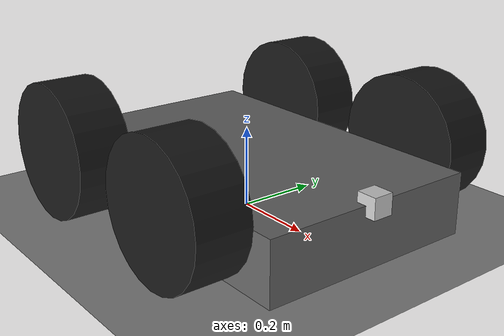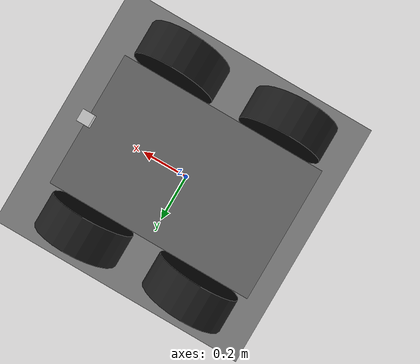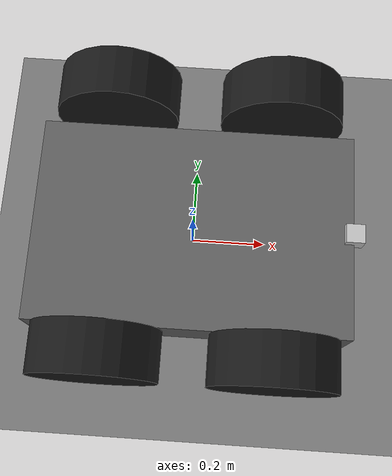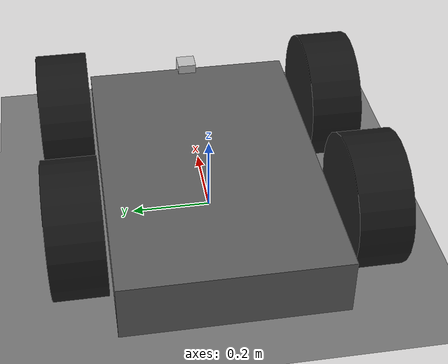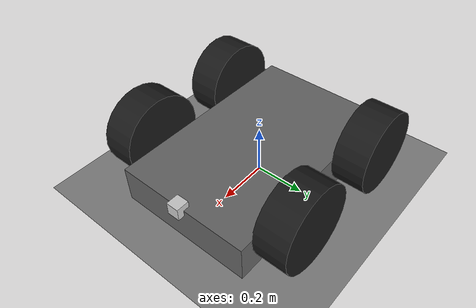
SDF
<?xml version="1.0" ?>
<sdf version="1.7">
  <world name="field_world">
    <!-- Physics and Scene Configuration -->
    <physics name="default_physics" type="dart">
      <dart>
        <collision_detector>bullet</collision_detector>
      </dart>
    </physics>

    <scene>
      <ambient>0.8 0.8 0.8 1.0</ambient>
      <background>0.9 0.9 0.9 1.0</background>
    </scene>

    <!-- Ground Plane -->
    <model name="ground_plane">
      <static>true</static>
      <link name="link">
        <collision name="collision">
          <geometry>
            <plane>
              <normal>0 0 1</normal>
              <size>100 100</size>
            </plane>
          </geometry>
        </collision>
        <visual name="visual">
          <geometry>
            <plane>
              <normal>0 0 1</normal>
              <size>100 100</size>
            </plane>
          </geometry>
          <material>
            <ambient>0.5 0.5 0.5 1</ambient>
            <diffuse>0.5 0.5 0.5 1</diffuse>
            <specular>0.0 0.0 0.0 1</specular>
          </material>
        </visual>
      </link>
    </model>

    <!-- Sun Light -->
    <model name="sun">
      <static>true</static>
      <link name="link">
        <light name="sun" type="directional">
          <cast_shadows>true</cast_shadows>
          <intensity>1.0</intensity>
          <direction>-0.5 0.1 -0.9</direction>
          <diffuse>0.8 0.8 0.8 1</diffuse>
          <specular>0.2 0.2 0.2 1</specular>
        </light>
      </link>
    </model>

    <!-- Fieldbot Robot Model -->
    <model name="fieldbot">
      <static>false</static>
      <pose>0 0 0 0 0 0</pose>

      <!-- Chassis (base link) -->
      <link name="base_link">
        <pose>0 0 0.075 0 0 0</pose>
        <inertial>
          <mass>11.78</mass>
          <!-- Inertia for box: Ixx=(1/12)*m*(w^2+h^2), Iyy=(1/12)*m*(l^2+h^2), Izz=(1/12)*m*(l^2+w^2) -->
          <!-- With L=0.85, W=0.55, H=0.15, m=11.78 -->
          <inertia>
            <ixx>0.3190</ixx>
            <iyy>0.7313</iyy>
            <izz>1.0062</izz>
            <ixy>0.0</ixy>
            <ixz>0.0</ixz>
            <iyz>0.0</iyz>
          </inertia>
        </inertial>
        <visual name="chassis_visual">
          <pose>0 0 0 0 0 0</pose>
          <geometry>
            <box>
              <size>0.85 0.55 0.15</size>
            </box>
          </geometry>
          <material>
            <ambient>0.2 0.2 0.2 1</ambient>
            <diffuse>0.4 0.4 0.4 1</diffuse>
            <specular>0.1 0.1 0.1 1</specular>
          </material>
        </visual>
        <collision name="chassis_collision">
          <pose>0 0 0 0 0 0</pose>
          <geometry>
            <box>
              <size>0.85 0.55 0.15</size>
            </box>
          </geometry>
        </collision>
      </link>

      <!-- Battery compartment link (mounted on chassis) -->
      <link name="battery_link">
        <pose>0 0 -0.02 0 0 0</pose>
        <inertial>
          <mass>4.0</mass>
          <inertia>
            <ixx>0.005</ixx>
            <iyy>0.008</iyy>
            <izz>0.010</izz>
            <ixy>0.0</ixy>
            <ixz>0.0</ixz>
            <iyz>0.0</iyz>
          </inertia>
        </inertial>
        <visual name="battery_visual">
          <geometry>
            <box>
              <size>0.3 0.2 0.05</size>
            </box>
          </geometry>
          <material>
            <ambient>0.8 0.1 0.1 1</ambient>
            <diffuse>1.0 0.2 0.2 1</diffuse>
          </material>
        </visual>
      </link>

      <joint name="battery_joint" type="fixed">
        <parent>base_link</parent>
        <child>battery_link</child>
      </joint>

      <!-- Wheel parameters -->
      <!-- wheel radius = 0.165 m (33 cm diameter), width = 0.13 m -->
      <!-- Mass per wheel = 3.25 kg (includes motor and bearings) -->

      <!-- Front Left Wheel -->
      <link name="wheel_front_left_link">
        <pose>0.2225 0.35 0.165 0 0 0</pose>
        <inertial>
          <mass>3.25</mass>
          <!-- Cylinder inertia: Ixx=Izz=(1/4)*m*r^2+(1/12)*m*w^2, Iyy=(1/2)*m*r^2 -->
          <inertia>
            <ixx>0.02689</ixx>
            <iyy>0.04437</iyy>
            <izz>0.02689</izz>
            <ixy>0.0</ixy>
            <ixz>0.0</ixz>
            <iyz>0.0</iyz>
          </inertia>
        </inertial>
        <visual name="wheel_fl_visual">
          <pose>0 0 0 1.5708 0 0</pose>
          <geometry>
            <cylinder>
              <radius>0.165</radius>
              <length>0.13</length>
            </cylinder>
          </geometry>
          <material>
            <ambient>0.05 0.05 0.05 1</ambient>
            <diffuse>0.1 0.1 0.1 1</diffuse>
          </material>
        </visual>
        <collision name="wheel_fl_collision">
          <pose>0 0 0 1.5708 0 0</pose>
          <geometry>
            <cylinder>
              <radius>0.165</radius>
              <length>0.13</length>
            </cylinder>
          </geometry>
        </collision>
      </link>

      <!-- Front Right Wheel -->
      <link name="wheel_front_right_link">
        <pose>0.2225 -0.35 0.165 0 0 0</pose>
        <inertial>
          <mass>3.25</mass>
          <inertia>
            <ixx>0.02689</ixx>
            <iyy>0.04437</iyy>
            <izz>0.02689</izz>
            <ixy>0.0</ixy>
            <ixz>0.0</ixz>
            <iyz>0.0</iyz>
          </inertia>
        </inertial>
        <visual name="wheel_fr_visual">
          <pose>0 0 0 1.5708 0 0</pose>
          <geometry>
            <cylinder>
              <radius>0.165</radius>
              <length>0.13</length>
            </cylinder>
          </geometry>
          <material>
            <ambient>0.05 0.05 0.05 1</ambient>
            <diffuse>0.1 0.1 0.1 1</diffuse>
          </material>
        </visual>
        <collision name="wheel_fr_collision">
          <pose>0 0 0 1.5708 0 0</pose>
          <geometry>
            <cylinder>
              <radius>0.165</radius>
              <length>0.13</length>
            </cylinder>
          </geometry>
        </collision>
      </link>

      <!-- Rear Left Wheel -->
      <link name="wheel_rear_left_link">
        <pose>-0.2225 0.35 0.165 0 0 0</pose>
        <inertial>
          <mass>3.25</mass>
          <inertia>
            <ixx>0.02689</ixx>
            <iyy>0.04437</iyy>
            <izz>0.02689</izz>
            <ixy>0.0</ixy>
            <ixz>0.0</ixz>
            <iyz>0.0</iyz>
          </inertia>
        </inertial>
        <visual name="wheel_rl_visual">
          <pose>0 0 0 1.5708 0 0</pose>
          <geometry>
            <cylinder>
              <radius>0.165</radius>
              <length>0.13</length>
            </cylinder>
          </geometry>
          <material>
            <ambient>0.05 0.05 0.05 1</ambient>
            <diffuse>0.1 0.1 0.1 1</diffuse>
          </material>
        </visual>
        <collision name="wheel_rl_collision">
          <pose>0 0 0 1.5708 0 0</pose>
          <geometry>
            <cylinder>
              <radius>0.165</radius>
              <length>0.13</length>
            </cylinder>
          </geometry>
        </collision>
      </link>

      <!-- Rear Right Wheel -->
      <link name="wheel_rear_right_link">
        <pose>-0.2225 -0.35 0.165 0 0 0</pose>
        <inertial>
          <mass>3.25</mass>
          <inertia>
            <ixx>0.02689</ixx>
            <iyy>0.04437</iyy>
            <izz>0.02689</izz>
            <ixy>0.0</ixy>
            <ixz>0.0</ixz>
            <iyz>0.0</iyz>
          </inertia>
        </inertial>
        <visual name="wheel_rr_visual">
          <pose>0 0 0 1.5708 0 0</pose>
          <geometry>
            <cylinder>
              <radius>0.165</radius>
              <length>0.13</length>
            </cylinder>
          </geometry>
          <material>
            <ambient>0.05 0.05 0.05 1</ambient>
            <diffuse>0.1 0.1 0.1 1</diffuse>
          </material>
        </visual>
        <collision name="wheel_rr_collision">
          <pose>0 0 0 1.5708 0 0</pose>
          <geometry>
            <cylinder>
              <radius>0.165</radius>
              <length>0.13</length>
            </cylinder>
          </geometry>
        </collision>
      </link>

      <!-- Joints: revolute joints connecting wheels to base -->
      <joint name="joint_wheel_fl" type="revolute">
        <parent>base_link</parent>
        <child>wheel_front_left_link</child>
        <pose>0.2225 0.35 0 0 0 0</pose>
        <axis>
          <xyz>0 1 0</xyz>
          <limit>
            <lower>-1000</lower>
            <upper>1000</upper>
            <effort>100</effort>
            <velocity>10</velocity>
          </limit>
          <dynamics>
            <damping>0.05</damping>
            <friction>0.01</friction>
          </dynamics>
        </axis>
      </joint>

      <joint name="joint_wheel_fr" type="revolute">
        <parent>base_link</parent>
        <child>wheel_front_right_link</child>
        <pose>0.2225 -0.35 0 0 0 0</pose>
        <axis>
          <xyz>0 1 0</xyz>
          <limit>
            <lower>-1000</lower>
            <upper>1000</upper>
            <effort>100</effort>
            <velocity>10</velocity>
          </limit>
          <dynamics>
            <damping>0.05</damping>
            <friction>0.01</friction>
          </dynamics>
        </axis>
      </joint>

      <joint name="joint_wheel_rl" type="revolute">
        <parent>base_link</parent>
        <child>wheel_rear_left_link</child>
        <pose>-0.2225 0.35 0 0 0 0</pose>
        <axis>
          <xyz>0 1 0</xyz>
          <limit>
            <lower>-1000</lower>
            <upper>1000</upper>
            <effort>100</effort>
            <velocity>10</velocity>
          </limit>
          <dynamics>
            <damping>0.05</damping>
            <friction>0.01</friction>
          </dynamics>
        </axis>
      </joint>

      <joint name="joint_wheel_rr" type="revolute">
        <parent>base_link</parent>
        <child>wheel_rear_right_link</child>
        <pose>-0.2225 -0.35 0 0 0 0</pose>
        <axis>
          <xyz>0 1 0</xyz>
          <limit>
            <lower>-1000</lower>
            <upper>1000</upper>
            <effort>100</effort>
            <velocity>10</velocity>
          </limit>
          <dynamics>
            <damping>0.05</damping>
            <friction>0.01</friction>
          </dynamics>
        </axis>
      </joint>

      <!-- Camera mount for sensor integration -->
      <link name="camera_mount">
        <pose>0.425 0 0.15 0 0 0</pose>
        <inertial>
          <mass>0.1</mass>
          <inertia>
            <ixx>0.0001</ixx>
            <iyy>0.0001</iyy>
            <izz>0.0001</izz>
            <ixy>0.0</ixy>
            <ixz>0.0</ixz>
            <iyz>0.0</iyz>
          </inertia>
        </inertial>
        <visual name="camera_mount_visual">
          <geometry>
            <box>
              <size>0.05 0.05 0.05</size>
            </box>
          </geometry>
          <material>
            <ambient>0.7 0.7 0.7 1</ambient>
            <diffuse>0.8 0.8 0.8 1</diffuse>
          </material>
        </visual>
      </link>

      <joint name="camera_mount_joint" type="fixed">
        <parent>base_link</parent>
        <child>camera_mount</child>
      </joint>
    </model>

  </world>
</sdf>
